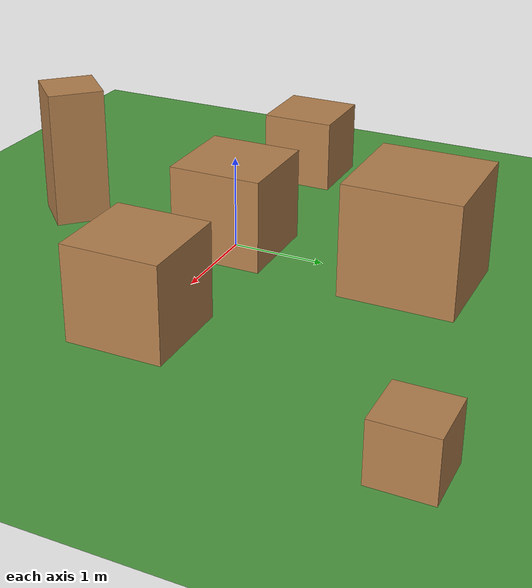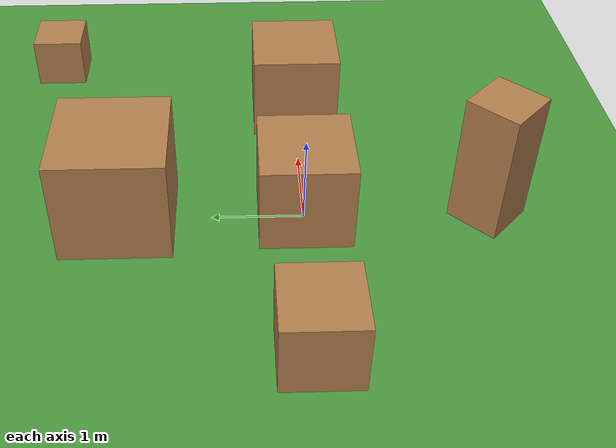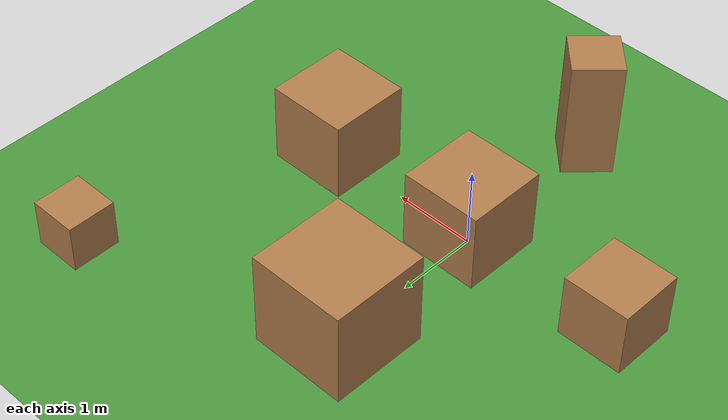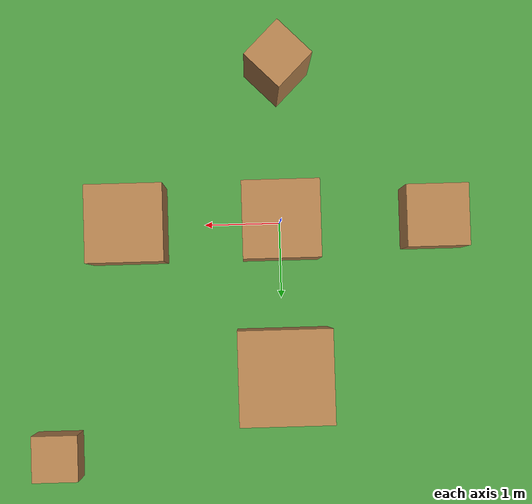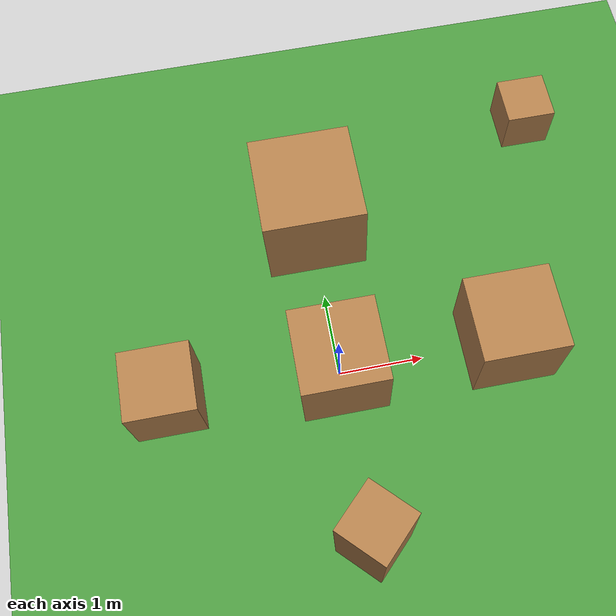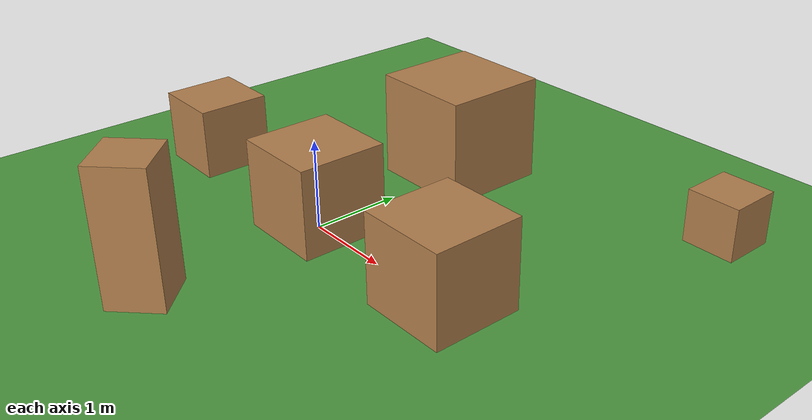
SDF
<?xml version="1.0" ?>
<sdf version="1.6">
  <world name="default">

    <!-- Global lighting -->
    <include>
      <uri>model://sun</uri>
    </include>

    <!-- Ground Plane -->
    <model name="ground_plane">
      <static>true</static>
      <link name="link">
        <collision name="collision">
          <geometry>
            <plane>
              <normal>0 0 1</normal>
              <size>100 100</size>
            </plane>
          </geometry>
        </collision>
        <visual name="visual">
          <geometry>
            <plane>
              <normal>0 0 1</normal>
              <size>100 100</size>
            </plane>
          </geometry>
          <material>
            <script>
              <uri>file://media/materials/scripts/gazebo.material</uri>
              <name>Gazebo/Grass</name>
            </script>
          </material>
        </visual>
      </link>
    </model>

    <!-- Black Box -->
    <model name="black_box">
      <pose>0 0 0.5 0 0 0</pose>
      <static>true</static>
      <link name="link">
        <collision name="collision">
          <geometry>
            <box><size>1 1 1</size></box>
          </geometry>
        </collision>
        <visual name="visual">
          <geometry>
            <box><size>1 1 1</size></box>
          </geometry>
          <material>
            <script>
              <uri>file://media/materials/scripts</uri>
              <name>wood</name>
            </script>
          </material>
        </visual>
      </link>
    </model>

    <!-- Red Box -->
    <model name="red_box">
      <pose>2 0 0.5 0 0 0</pose>
      <static>true</static>
      <link name="link">
        <collision name="collision">
          <geometry>
            <box><size>1 1 1</size></box>
          </geometry>
        </collision>
        <visual name="visual">
          <geometry>
            <box><size>1 1 1</size></box>
          </geometry>
          <material>
            <script>
              <uri>file://media/materials/scripts</uri>
              <name>wood</name>
            </script>
          </material>
        </visual>
      </link>
    </model>

    <!-- Green Box -->
    <model name="green_box">
      <pose>-2 0 0.5 0 0 0</pose>
      <static>true</static>
      <link name="link">
        <collision name="collision">
          <geometry>
            <box><size>0.8 0.8 0.8</size></box>
          </geometry>
        </collision>
        <visual name="visual">
          <geometry>
            <box><size>0.8 0.8 0.8</size></box>
          </geometry>
          <material>
            <script>
              <uri>file://media/materials/scripts</uri>
              <name>wood</name>
            </script>
          </material>
        </visual>
      </link>
    </model>

    <!-- Blue Box -->
    <model name="blue_box">
      <pose>0 2 0.6 0 0 0</pose>
      <static>true</static>
      <link name="link">
        <collision name="collision">
          <geometry>
            <box><size>1.2 1.2 1.2</size></box>
          </geometry>
        </collision>
        <visual name="visual">
          <geometry>
            <box><size>1.2 1.2 1.2</size></box>
          </geometry>
          <material>
            <script>
              <uri>file://media/materials/scripts</uri>
              <name>wood</name>
            </script>
          </material>
        </visual>
      </link>
    </model>

    <!-- Yellow Box -->
    <model name="yellow_box">
      <pose>0 -2 0.75 0 0 0.785</pose>
      <static>true</static>
      <link name="link">
        <collision name="collision">
          <geometry>
            <box><size>0.6 0.6 1.5</size></box>
          </geometry>
        </collision>
        <visual name="visual">
          <geometry>
            <box><size>0.6 0.6 1.5</size></box>
          </geometry>
          <material>
            <script>
              <uri>file://media/materials/scripts</uri>
              <name>wood</name>
            </script>
          </material>
        </visual>
      </link>
    </model>

    <!-- Transparent Purple Box -->
    <model name="purple_box">
      <pose>3 3 0.3 0 0 0</pose>
      <static>true</static>
      <link name="link">
        <collision name="collision">
          <geometry>
            <box><size>0.6 0.6 0.6</size></box>
          </geometry>
        </collision>
        <visual name="visual">
          <geometry>
            <box><size>0.6 0.6 0.6</size></box>
          </geometry>
          <material>
            <script>
              <uri>file://media/materials/scripts</uri>
              <name>wood</name>
            </script>
            <transparency>0.3</transparency>
          </material>
        </visual>
      </link>
    </model>

  </world>
</sdf>
